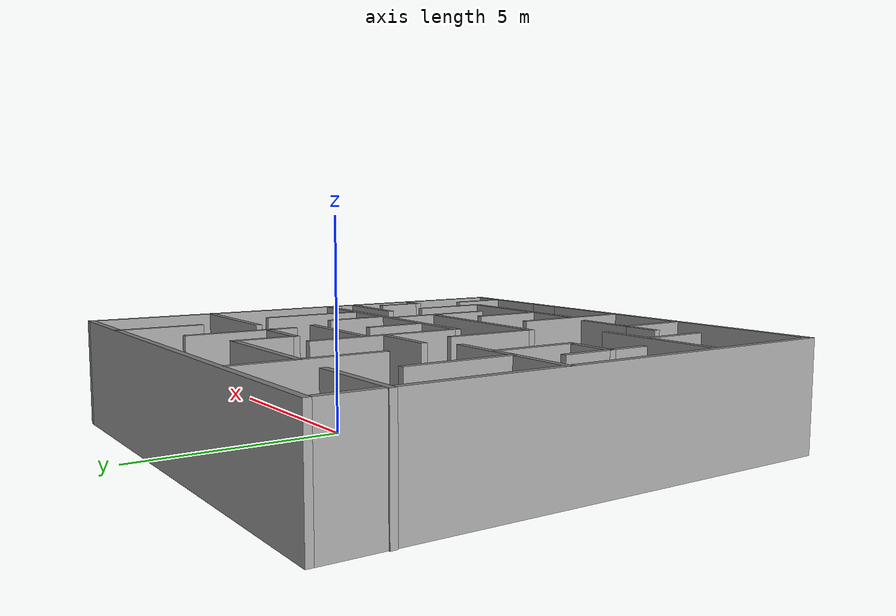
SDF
<?xml version='1.0'?>
<sdf version='1.6'>
  <model name='migong'>
    <pose frame=''>-1.49161 -1.44 0 0 -0 0</pose>
    <link name='Wall_100'>
      <collision name='Wall_100_Collision'>
        <geometry>
          <box>
            <size>1.5 0.15 2.5</size>
          </box>
        </geometry>
        <pose frame=''>0 0 1.25 0 -0 0</pose>
      </collision>
      <visual name='Wall_100_Visual'>
        <pose frame=''>0 0 1.25 0 -0 0</pose>
        <geometry>
          <box>
            <size>1.5 0.15 2.5</size>
          </box>
        </geometry>
        <material>
          <script>
            <uri>file://media/materials/scripts/gazebo.material</uri>
            <name>Gazebo/Grey</name>
          </script>
          <ambient>1 1 1 1</ambient>
        </material>
        <meta>
          <layer>0</layer>
        </meta>
      </visual>
      <pose frame=''>0.950852 0.184929 0 0 -0 1.5708</pose>
    </link>
    <link name='Wall_102'>
      <collision name='Wall_102_Collision'>
        <geometry>
          <box>
            <size>1.5 0.15 2.5</size>
          </box>
        </geometry>
        <pose frame=''>0 0 1.25 0 -0 0</pose>
      </collision>
      <visual name='Wall_102_Visual'>
        <pose frame=''>0 0 1.25 0 -0 0</pose>
        <geometry>
          <box>
            <size>1.5 0.15 2.5</size>
          </box>
        </geometry>
        <material>
          <script>
            <uri>file://media/materials/scripts/gazebo.material</uri>
            <name>Gazebo/Grey</name>
          </script>
          <ambient>1 1 1 1</ambient>
        </material>
        <meta>
          <layer>0</layer>
        </meta>
      </visual>
      <pose frame=''>-1.19244 1.32015 0 0 -0 3.14159</pose>
    </link>
    <link name='Wall_104'>
      <collision name='Wall_104_Collision'>
        <geometry>
          <box>
            <size>1.75 0.15 2.5</size>
          </box>
        </geometry>
        <pose frame=''>0 0 1.25 0 -0 0</pose>
      </collision>
      <visual name='Wall_104_Visual'>
        <pose frame=''>0 0 1.25 0 -0 0</pose>
        <geometry>
          <box>
            <size>1.75 0.15 2.5</size>
          </box>
        </geometry>
        <material>
          <script>
            <uri>file://media/materials/scripts/gazebo.material</uri>
            <name>Gazebo/Grey</name>
          </script>
          <ambient>1 1 1 1</ambient>
        </material>
        <meta>
          <layer>0</layer>
        </meta>
      </visual>
      <pose frame=''>1.42583 -3.4373 0 0 -0 1.5708</pose>
    </link>
    <link name='Wall_15'>
      <pose frame=''>0.016606 -5.8 0 0 -0 0</pose>
      <visual name='Wall_15_Visual_0'>
        <pose frame=''>-1.78008 0 1.25 0 -0 0</pose>
        <geometry>
          <box>
            <size>7.93985 0.15 2.5</size>
          </box>
        </geometry>
        <material>
          <script>
            <uri>file://media/materials/scripts/gazebo.material</uri>
            <name>Gazebo/Grey</name>
          </script>
          <ambient>1 1 1 1</ambient>
        </material>
        <meta>
          <layer>0</layer>
        </meta>
      </visual>
      <collision name='Wall_15_Collision_0'>
        <geometry>
          <box>
            <size>7.93985 0.15 2.5</size>
          </box>
        </geometry>
        <pose frame=''>-1.78008 0 1.25 0 -0 0</pose>
      </collision>
      <visual name='Wall_15_Visual_1'>
        <pose frame=''>4.41992 0 1.25 0 -0 0</pose>
        <geometry>
          <box>
            <size>2.66015 0.15 2.5</size>
          </box>
        </geometry>
        <material>
          <script>
            <uri>file://media/materials/scripts/gazebo.material</uri>
            <name>Gazebo/Grey</name>
          </script>
          <ambient>1 1 1 1</ambient>
        </material>
        <meta>
          <layer>0</layer>
        </meta>
      </visual>
      <collision name='Wall_15_Collision_1'>
        <geometry>
          <box>
            <size>2.66015 0.15 2.5</size>
          </box>
        </geometry>
        <pose frame=''>4.41992 0 1.25 0 -0 0</pose>
      </collision>
      <visual name='Wall_15_Visual_2'>
        <pose frame=''>2.63985 0 2.25 0 -0 0</pose>
        <geometry>
          <box>
            <size>0.9 0.15 0.5</size>
          </box>
        </geometry>
        <material>
          <script>
            <uri>file://media/materials/scripts/gazebo.material</uri>
            <name>Gazebo/Grey</name>
          </script>
          <ambient>1 1 1 1</ambient>
        </material>
        <meta>
          <layer>0</layer>
        </meta>
      </visual>
      <collision name='Wall_15_Collision_2'>
        <geometry>
          <box>
            <size>0.9 0.15 0.5</size>
          </box>
        </geometry>
        <pose frame=''>2.63985 0 2.25 0 -0 0</pose>
      </collision>
    </link>
    <link name='Wall_16'>
      <collision name='Wall_16_Collision'>
        <geometry>
          <box>
            <size>5.4 0.15 2.5</size>
          </box>
        </geometry>
        <pose frame=''>0 0 1.25 0 -0 0</pose>
      </collision>
      <visual name='Wall_16_Visual'>
        <pose frame=''>0 0 1.25 0 -0 0</pose>
        <geometry>
          <box>
            <size>5.4 0.15 2.5</size>
          </box>
        </geometry>
        <material>
          <script>
            <uri>file://media/materials/scripts/gazebo.material</uri>
            <name>Gazebo/Grey</name>
          </script>
          <ambient>1 1 1 1</ambient>
        </material>
        <meta>
          <layer>0</layer>
        </meta>
      </visual>
      <pose frame=''>5.69161 -3.175 0 0 -0 1.5708</pose>
    </link>
    <link name='Wall_18'>
      <collision name='Wall_18_Collision'>
        <geometry>
          <box>
            <size>3.75 0.15 2.5</size>
          </box>
        </geometry>
        <pose frame=''>0 0 1.25 0 -0 0</pose>
      </collision>
      <visual name='Wall_18_Visual'>
        <pose frame=''>0 0 1.25 0 -0 0</pose>
        <geometry>
          <box>
            <size>3.75 0.15 2.5</size>
          </box>
        </geometry>
        <material>
          <script>
            <uri>file://media/materials/scripts/gazebo.material</uri>
            <name>Gazebo/Grey</name>
          </script>
          <ambient>1 1 1 1</ambient>
        </material>
        <meta>
          <layer>0</layer>
        </meta>
      </visual>
      <pose frame=''>-0.408394 1.25 0 0 -0 1.5708</pose>
    </link>
    <link name='Wall_20'>
      <collision name='Wall_20_Collision'>
        <geometry>
          <box>
            <size>2.75 0.15 2.5</size>
          </box>
        </geometry>
        <pose frame=''>0 0 1.25 0 -0 0</pose>
      </collision>
      <visual name='Wall_20_Visual'>
        <pose frame=''>0 0 1.25 0 -0 0</pose>
        <geometry>
          <box>
            <size>2.75 0.15 2.5</size>
          </box>
        </geometry>
        <material>
          <script>
            <uri>file://media/materials/scripts/gazebo.material</uri>
            <name>Gazebo/Grey</name>
          </script>
          <ambient>1 1 1 1</ambient>
        </material>
        <meta>
          <layer>0</layer>
        </meta>
      </visual>
      <pose frame=''>2.3936 -1.9586 0 0 -0 -1.5708</pose>
    </link>
    <link name='Wall_25'>
      <collision name='Wall_25_Collision'>
        <geometry>
          <box>
            <size>2.5 0.15 2.5</size>
          </box>
        </geometry>
        <pose frame=''>0 0 1.25 0 -0 0</pose>
      </collision>
      <visual name='Wall_25_Visual'>
        <pose frame=''>0 0 1.25 0 -0 0</pose>
        <geometry>
          <box>
            <size>2.5 0.15 2.5</size>
          </box>
        </geometry>
        <material>
          <script>
            <uri>file://media/materials/scripts/gazebo.material</uri>
            <name>Gazebo/Grey</name>
          </script>
          <ambient>1 1 1 1</ambient>
        </material>
        <meta>
          <layer>0</layer>
        </meta>
      </visual>
      <pose frame=''>0.841365 1.75372 0 0 -0 0</pose>
    </link>
    <link name='Wall_29'>
      <collision name='Wall_29_Collision'>
        <geometry>
          <box>
            <size>2 0.15 2.5</size>
          </box>
        </geometry>
        <pose frame=''>0 0 1.25 0 -0 0</pose>
      </collision>
      <visual name='Wall_29_Visual'>
        <pose frame=''>0 0 1.25 0 -0 0</pose>
        <geometry>
          <box>
            <size>2 0.15 2.5</size>
          </box>
        </geometry>
        <material>
          <script>
            <uri>file://media/materials/scripts/gazebo.material</uri>
            <name>Gazebo/Grey</name>
          </script>
          <ambient>1 1 1 1</ambient>
        </material>
        <meta>
          <layer>0</layer>
        </meta>
      </visual>
      <pose frame=''>3.51742 4.86499 0 0 -0 -1.5708</pose>
    </link>
    <link name='Wall_3'>
      <collision name='Wall_3_Collision'>
        <geometry>
          <box>
            <size>6.25 0.15 2.5</size>
          </box>
        </geometry>
        <pose frame=''>0 0 1.25 0 -0 0</pose>
      </collision>
      <visual name='Wall_3_Visual'>
        <pose frame=''>0 0 1.25 0 -0 0</pose>
        <geometry>
          <box>
            <size>6.25 0.15 2.5</size>
          </box>
        </geometry>
        <material>
          <script>
            <uri>file://media/materials/scripts/gazebo.material</uri>
            <name>Gazebo/Grey</name>
          </script>
          <ambient>1 1 1 1</ambient>
        </material>
        <meta>
          <layer>0</layer>
        </meta>
      </visual>
      <pose frame=''>2.64161 -0.55 0 0 -0 0</pose>
    </link>
    <link name='Wall_31'>
      <collision name='Wall_31_Collision'>
        <geometry>
          <box>
            <size>3.25 0.15 2.5</size>
          </box>
        </geometry>
        <pose frame=''>0 0 1.25 0 -0 0</pose>
      </collision>
      <visual name='Wall_31_Visual'>
        <pose frame=''>0 0 1.25 0 -0 0</pose>
        <geometry>
          <box>
            <size>3.25 0.15 2.5</size>
          </box>
        </geometry>
        <material>
          <script>
            <uri>file://media/materials/scripts/gazebo.material</uri>
            <name>Gazebo/Grey</name>
          </script>
          <ambient>1 1 1 1</ambient>
        </material>
        <meta>
          <layer>0</layer>
        </meta>
      </visual>
      <pose frame=''>-4.08756 0.830504 0 0 -0 0</pose>
    </link>
    <link name='Wall_33'>
      <collision name='Wall_33_Collision'>
        <geometry>
          <box>
            <size>3.25 0.15 2.5</size>
          </box>
        </geometry>
        <pose frame=''>0 0 1.25 0 -0 0</pose>
      </collision>
      <visual name='Wall_33_Visual'>
        <pose frame=''>0 0 1.25 0 -0 0</pose>
        <geometry>
          <box>
            <size>3.25 0.15 2.5</size>
          </box>
        </geometry>
        <material>
          <script>
            <uri>file://media/materials/scripts/gazebo.material</uri>
            <name>Gazebo/Grey</name>
          </script>
          <ambient>1 1 1 1</ambient>
        </material>
        <meta>
          <layer>0</layer>
        </meta>
      </visual>
      <pose frame=''>-2.47393 4.11899 0 0 -0 -1.5708</pose>
    </link>
    <link name='Wall_35'>
      <collision name='Wall_35_Collision'>
        <geometry>
          <box>
            <size>3 0.15 2.5</size>
          </box>
        </geometry>
        <pose frame=''>0 0 1.25 0 -0 0</pose>
      </collision>
      <visual name='Wall_35_Visual'>
        <pose frame=''>0 0 1.25 0 -0 0</pose>
        <geometry>
          <box>
            <size>3 0.15 2.5</size>
          </box>
        </geometry>
        <material>
          <script>
            <uri>file://media/materials/scripts/gazebo.material</uri>
            <name>Gazebo/Grey</name>
          </script>
          <ambient>1 1 1 1</ambient>
        </material>
        <meta>
          <layer>0</layer>
        </meta>
      </visual>
      <pose frame=''>-4.07299 -2.98446 0 0 -0 0</pose>
    </link>
    <link name='Wall_37'>
      <collision name='Wall_37_Collision'>
        <geometry>
          <box>
            <size>2.5 0.15 2.5</size>
          </box>
        </geometry>
        <pose frame=''>0 0 1.25 0 -0 0</pose>
      </collision>
      <visual name='Wall_37_Visual'>
        <pose frame=''>0 0 1.25 0 -0 0</pose>
        <geometry>
          <box>
            <size>2.5 0.15 2.5</size>
          </box>
        </geometry>
        <material>
          <script>
            <uri>file://media/materials/scripts/gazebo.material</uri>
            <name>Gazebo/Grey</name>
          </script>
          <ambient>1 1 1 1</ambient>
        </material>
        <meta>
          <layer>0</layer>
        </meta>
      </visual>
      <pose frame=''>-4.14879 2.0055 0 0 -0 1.5708</pose>
    </link>
    <link name='Wall_39'>
      <collision name='Wall_39_Collision'>
        <geometry>
          <box>
            <size>3 0.15 2.5</size>
          </box>
        </geometry>
        <pose frame=''>0 0 1.25 0 -0 0</pose>
      </collision>
      <visual name='Wall_39_Visual'>
        <pose frame=''>0 0 1.25 0 -0 0</pose>
        <geometry>
          <box>
            <size>3 0.15 2.5</size>
          </box>
        </geometry>
        <material>
          <script>
            <uri>file://media/materials/scripts/gazebo.material</uri>
            <name>Gazebo/Grey</name>
          </script>
          <ambient>1 1 1 1</ambient>
        </material>
        <meta>
          <layer>0</layer>
        </meta>
      </visual>
      <pose frame=''>-0.054688 -4.30437 0 0 -0 1.5708</pose>
    </link>
    <link name='Wall_4'>
      <collision name='Wall_4_Collision'>
        <geometry>
          <box>
            <size>6.5 0.15 2.5</size>
          </box>
        </geometry>
        <pose frame=''>0 0 1.25 0 -0 0</pose>
      </collision>
      <visual name='Wall_4_Visual'>
        <pose frame=''>0 0 1.25 0 -0 0</pose>
        <geometry>
          <box>
            <size>6.5 0.15 2.5</size>
          </box>
        </geometry>
        <material>
          <script>
            <uri>file://media/materials/scripts/gazebo.material</uri>
            <name>Gazebo/Grey</name>
          </script>
          <ambient>1 1 1 1</ambient>
        </material>
        <meta>
          <layer>0</layer>
        </meta>
      </visual>
      <pose frame=''>5.69161 2.625 0 0 -0 1.5708</pose>
    </link>
    <link name='Wall_41'>
      <collision name='Wall_41_Collision'>
        <geometry>
          <box>
            <size>3.75 0.15 2.5</size>
          </box>
        </geometry>
        <pose frame=''>0 0 1.25 0 -0 0</pose>
      </collision>
      <visual name='Wall_41_Visual'>
        <pose frame=''>0 0 1.25 0 -0 0</pose>
        <geometry>
          <box>
            <size>3.75 0.15 2.5</size>
          </box>
        </geometry>
        <material>
          <script>
            <uri>file://media/materials/scripts/gazebo.material</uri>
            <name>Gazebo/Grey</name>
          </script>
          <ambient>1 1 1 1</ambient>
        </material>
        <meta>
          <layer>0</layer>
        </meta>
      </visual>
      <pose frame=''>0.37846 -1.82136 0 0 -0 3.14159</pose>
    </link>
    <link name='Wall_42'>
      <collision name='Wall_42_Collision'>
        <geometry>
          <box>
            <size>2.25 0.15 2.5</size>
          </box>
        </geometry>
        <pose frame=''>0 0 1.25 0 -0 0</pose>
      </collision>
      <visual name='Wall_42_Visual'>
        <pose frame=''>0 0 1.25 0 -0 0</pose>
        <geometry>
          <box>
            <size>2.25 0.15 2.5</size>
          </box>
        </geometry>
        <material>
          <script>
            <uri>file://media/materials/scripts/gazebo.material</uri>
            <name>Gazebo/Grey</name>
          </script>
          <ambient>1 1 1 1</ambient>
        </material>
        <meta>
          <layer>0</layer>
        </meta>
      </visual>
      <pose frame=''>-1.42154 -0.771359 0 0 -0 1.5708</pose>
    </link>
    <link name='Wall_44'>
      <collision name='Wall_44_Collision'>
        <geometry>
          <box>
            <size>4 0.15 2.5</size>
          </box>
        </geometry>
        <pose frame=''>0 0 1.25 0 -0 0</pose>
      </collision>
      <visual name='Wall_44_Visual'>
        <pose frame=''>0 0 1.25 0 -0 0</pose>
        <geometry>
          <box>
            <size>4 0.15 2.5</size>
          </box>
        </geometry>
        <material>
          <script>
            <uri>file://media/materials/scripts/gazebo.material</uri>
            <name>Gazebo/Grey</name>
          </script>
          <ambient>1 1 1 1</ambient>
        </material>
        <meta>
          <layer>0</layer>
        </meta>
      </visual>
      <pose frame=''>1.96577 -4.34396 0 0 -0 0</pose>
    </link>
    <link name='Wall_45'>
      <collision name='Wall_45_Collision'>
        <geometry>
          <box>
            <size>2 0.15 2.5</size>
          </box>
        </geometry>
        <pose frame=''>0 0 1.25 0 -0 0</pose>
      </collision>
      <visual name='Wall_45_Visual'>
        <pose frame=''>0 0 1.25 0 -0 0</pose>
        <geometry>
          <box>
            <size>2 0.15 2.5</size>
          </box>
        </geometry>
        <material>
          <script>
            <uri>file://media/materials/scripts/gazebo.material</uri>
            <name>Gazebo/Grey</name>
          </script>
          <ambient>1 1 1 1</ambient>
        </material>
        <meta>
          <layer>0</layer>
        </meta>
      </visual>
      <pose frame=''>3.89077 -3.41896 0 0 -0 1.5708</pose>
    </link>
    <link name='Wall_52'>
      <collision name='Wall_52_Collision'>
        <geometry>
          <box>
            <size>1.5 0.15 2.5</size>
          </box>
        </geometry>
        <pose frame=''>0 0 1.25 0 -0 0</pose>
      </collision>
      <visual name='Wall_52_Visual'>
        <pose frame=''>0 0 1.25 0 -0 0</pose>
        <geometry>
          <box>
            <size>1.5 0.15 2.5</size>
          </box>
        </geometry>
        <material>
          <script>
            <uri>file://media/materials/scripts/gazebo.material</uri>
            <name>Gazebo/Grey</name>
          </script>
          <ambient>1 1 1 1</ambient>
        </material>
        <meta>
          <layer>0</layer>
        </meta>
      </visual>
      <pose frame=''>-3.84477 -3.76819 0 0 -0 -1.5708</pose>
    </link>
    <link name='Wall_55'>
      <collision name='Wall_55_Collision'>
        <geometry>
          <box>
            <size>3 0.15 2.5</size>
          </box>
        </geometry>
        <pose frame=''>0 0 1.25 0 -0 0</pose>
      </collision>
      <visual name='Wall_55_Visual'>
        <pose frame=''>0 0 1.25 0 -0 0</pose>
        <geometry>
          <box>
            <size>3 0.15 2.5</size>
          </box>
        </geometry>
        <material>
          <script>
            <uri>file://media/materials/scripts/gazebo.material</uri>
            <name>Gazebo/Grey</name>
          </script>
          <ambient>1 1 1 1</ambient>
        </material>
        <meta>
          <layer>0</layer>
        </meta>
      </visual>
      <pose frame=''>-0.966836 4.33549 0 0 -0 0</pose>
    </link>
    <link name='Wall_56'>
      <collision name='Wall_56_Collision'>
        <geometry>
          <box>
            <size>1.5 0.15 2.5</size>
          </box>
        </geometry>
        <pose frame=''>0 0 1.25 0 -0 0</pose>
      </collision>
      <visual name='Wall_56_Visual'>
        <pose frame=''>0 0 1.25 0 -0 0</pose>
        <geometry>
          <box>
            <size>1.5 0.15 2.5</size>
          </box>
        </geometry>
        <material>
          <script>
            <uri>file://media/materials/scripts/gazebo.material</uri>
            <name>Gazebo/Grey</name>
          </script>
          <ambient>1 1 1 1</ambient>
        </material>
        <meta>
          <layer>0</layer>
        </meta>
      </visual>
      <pose frame=''>0.458164 3.66048 0 0 -0 -1.5708</pose>
    </link>
    <link name='Wall_57'>
      <collision name='Wall_57_Collision'>
        <geometry>
          <box>
            <size>1.5 0.15 2.5</size>
          </box>
        </geometry>
        <pose frame=''>0 0 1.25 0 -0 0</pose>
      </collision>
      <visual name='Wall_57_Visual'>
        <pose frame=''>0 0 1.25 0 -0 0</pose>
        <geometry>
          <box>
            <size>1.5 0.15 2.5</size>
          </box>
        </geometry>
        <material>
          <script>
            <uri>file://media/materials/scripts/gazebo.material</uri>
            <name>Gazebo/Grey</name>
          </script>
          <ambient>1 1 1 1</ambient>
        </material>
        <meta>
          <layer>0</layer>
        </meta>
      </visual>
      <pose frame=''>1.13316 2.98548 0 0 -0 0</pose>
    </link>
    <link name='Wall_59'>
      <collision name='Wall_59_Collision'>
        <geometry>
          <box>
            <size>2.5 0.15 2.5</size>
          </box>
        </geometry>
        <pose frame=''>0 0 1.25 0 -0 0</pose>
      </collision>
      <visual name='Wall_59_Visual'>
        <pose frame=''>0 0 1.25 0 -0 0</pose>
        <geometry>
          <box>
            <size>2.5 0.15 2.5</size>
          </box>
        </geometry>
        <material>
          <script>
            <uri>file://media/materials/scripts/gazebo.material</uri>
            <name>Gazebo/Grey</name>
          </script>
          <ambient>1 1 1 1</ambient>
        </material>
        <meta>
          <layer>0</layer>
        </meta>
      </visual>
      <pose frame=''>4.04588 0.761351 0 0 -0 1.5708</pose>
    </link>
    <link name='Wall_61'>
      <collision name='Wall_61_Collision'>
        <geometry>
          <box>
            <size>2 0.15 2.5</size>
          </box>
        </geometry>
        <pose frame=''>0 0 1.25 0 -0 0</pose>
      </collision>
      <visual name='Wall_61_Visual'>
        <pose frame=''>0 0 1.25 0 -0 0</pose>
        <geometry>
          <box>
            <size>2 0.15 2.5</size>
          </box>
        </geometry>
        <material>
          <script>
            <uri>file://media/materials/scripts/gazebo.material</uri>
            <name>Gazebo/Grey</name>
          </script>
          <ambient>1 1 1 1</ambient>
        </material>
        <meta>
          <layer>0</layer>
        </meta>
      </visual>
      <pose frame=''>-3.55274 -0.177749 0 0 -0 -1.5708</pose>
    </link>
    <link name='Wall_62'>
      <collision name='Wall_62_Collision'>
        <geometry>
          <box>
            <size>1.25 0.15 2.5</size>
          </box>
        </geometry>
        <pose frame=''>0 0 1.25 0 -0 0</pose>
      </collision>
      <visual name='Wall_62_Visual'>
        <pose frame=''>0 0 1.25 0 -0 0</pose>
        <geometry>
          <box>
            <size>1.25 0.15 2.5</size>
          </box>
        </geometry>
        <material>
          <script>
            <uri>file://media/materials/scripts/gazebo.material</uri>
            <name>Gazebo/Grey</name>
          </script>
          <ambient>1 1 1 1</ambient>
        </material>
        <meta>
          <layer>0</layer>
        </meta>
      </visual>
      <pose frame=''>-4.10274 -1.10275 0 0 -0 3.14159</pose>
    </link>
    <link name='Wall_64'>
      <collision name='Wall_64_Collision'>
        <geometry>
          <box>
            <size>1 0.15 2.5</size>
          </box>
        </geometry>
        <pose frame=''>0 0 1.25 0 -0 0</pose>
      </collision>
      <visual name='Wall_64_Visual'>
        <pose frame=''>0 0 1.25 0 -0 0</pose>
        <geometry>
          <box>
            <size>1 0.15 2.5</size>
          </box>
        </geometry>
        <material>
          <script>
            <uri>file://media/materials/scripts/gazebo.material</uri>
            <name>Gazebo/Grey</name>
          </script>
          <ambient>1 1 1 1</ambient>
        </material>
        <meta>
          <layer>0</layer>
        </meta>
      </visual>
      <pose frame=''>-4.65273 -1.52775 0 0 -0 -1.5708</pose>
    </link>
    <link name='Wall_66'>
      <collision name='Wall_66_Collision'>
        <geometry>
          <box>
            <size>1.25 0.15 2.5</size>
          </box>
        </geometry>
        <pose frame=''>0 0 1.25 0 -0 0</pose>
      </collision>
      <visual name='Wall_66_Visual'>
        <pose frame=''>0 0 1.25 0 -0 0</pose>
        <geometry>
          <box>
            <size>1.25 0.15 2.5</size>
          </box>
        </geometry>
        <material>
          <script>
            <uri>file://media/materials/scripts/gazebo.material</uri>
            <name>Gazebo/Grey</name>
          </script>
          <ambient>1 1 1 1</ambient>
        </material>
        <meta>
          <layer>0</layer>
        </meta>
      </visual>
      <pose frame=''>-4.65273 -0.552749 0 0 -0 1.5708</pose>
    </link>
    <link name='Wall_70'>
      <collision name='Wall_70_Collision'>
        <geometry>
          <box>
            <size>2.25 0.15 2.5</size>
          </box>
        </geometry>
        <pose frame=''>0 0 1.25 0 -0 0</pose>
      </collision>
      <visual name='Wall_70_Visual'>
        <pose frame=''>0 0 1.25 0 -0 0</pose>
        <geometry>
          <box>
            <size>2.25 0.15 2.5</size>
          </box>
        </geometry>
        <material>
          <script>
            <uri>file://media/materials/scripts/gazebo.material</uri>
            <name>Gazebo/Grey</name>
          </script>
          <ambient>1 1 1 1</ambient>
        </material>
        <meta>
          <layer>0</layer>
        </meta>
      </visual>
      <pose frame=''>-4.64161 4.39496 0 0 -0 0</pose>
    </link>
    <link name='Wall_72'>
      <collision name='Wall_72_Collision'>
        <geometry>
          <box>
            <size>1.75 0.15 2.5</size>
          </box>
        </geometry>
        <pose frame=''>0 0 1.25 0 -0 0</pose>
      </collision>
      <visual name='Wall_72_Visual'>
        <pose frame=''>0 0 1.25 0 -0 0</pose>
        <geometry>
          <box>
            <size>1.75 0.15 2.5</size>
          </box>
        </geometry>
        <material>
          <script>
            <uri>file://media/materials/scripts/gazebo.material</uri>
            <name>Gazebo/Grey</name>
          </script>
          <ambient>1 1 1 1</ambient>
        </material>
        <meta>
          <layer>0</layer>
        </meta>
      </visual>
      <pose frame=''>-2.11864 -4.90272 0 0 -0 1.5708</pose>
    </link>
    <link name='Wall_75'>
      <collision name='Wall_75_Collision'>
        <geometry>
          <box>
            <size>1.5 0.15 2.5</size>
          </box>
        </geometry>
        <pose frame=''>0 0 1.25 0 -0 0</pose>
      </collision>
      <visual name='Wall_75_Visual'>
        <pose frame=''>0 0 1.25 0 -0 0</pose>
        <geometry>
          <box>
            <size>1.5 0.15 2.5</size>
          </box>
        </geometry>
        <material>
          <script>
            <uri>file://media/materials/scripts/gazebo.material</uri>
            <name>Gazebo/Grey</name>
          </script>
          <ambient>1 1 1 1</ambient>
        </material>
        <meta>
          <layer>0</layer>
        </meta>
      </visual>
      <pose frame=''>-1.44364 -4.10272 0 0 -0 0</pose>
    </link>
    <link name='Wall_77'>
      <collision name='Wall_77_Collision'>
        <geometry>
          <box>
            <size>1 0.15 2.5</size>
          </box>
        </geometry>
        <pose frame=''>0 0 1.25 0 -0 0</pose>
      </collision>
      <visual name='Wall_77_Visual'>
        <pose frame=''>0 0 1.25 0 -0 0</pose>
        <geometry>
          <box>
            <size>1 0.15 2.5</size>
          </box>
        </geometry>
        <material>
          <script>
            <uri>file://media/materials/scripts/gazebo.material</uri>
            <name>Gazebo/Grey</name>
          </script>
          <ambient>1 1 1 1</ambient>
        </material>
        <meta>
          <layer>0</layer>
        </meta>
      </visual>
      <pose frame=''>-2.54364 -4.10272 0 0 -0 3.14159</pose>
    </link>
    <link name='Wall_8'>
      <collision name='Wall_8_Collision'>
        <geometry>
          <box>
            <size>11.5 0.15 2.5</size>
          </box>
        </geometry>
        <pose frame=''>0 0 1.25 0 -0 0</pose>
      </collision>
      <visual name='Wall_8_Visual'>
        <pose frame=''>0 0 1.25 0 -0 0</pose>
        <geometry>
          <box>
            <size>11.5 0.15 2.5</size>
          </box>
        </geometry>
        <material>
          <script>
            <uri>file://media/materials/scripts/gazebo.material</uri>
            <name>Gazebo/Grey</name>
          </script>
          <ambient>1 1 1 1</ambient>
        </material>
        <meta>
          <layer>0</layer>
        </meta>
      </visual>
      <pose frame=''>0.016606 5.8 0 0 -0 3.14159</pose>
    </link>
    <link name='Wall_80'>
      <collision name='Wall_80_Collision'>
        <geometry>
          <box>
            <size>2 0.15 2.5</size>
          </box>
        </geometry>
        <pose frame=''>0 0 1.25 0 -0 0</pose>
      </collision>
      <visual name='Wall_80_Visual'>
        <pose frame=''>0 0 1.25 0 -0 0</pose>
        <geometry>
          <box>
            <size>2 0.15 2.5</size>
          </box>
        </geometry>
        <material>
          <script>
            <uri>file://media/materials/scripts/gazebo.material</uri>
            <name>Gazebo/Grey</name>
          </script>
          <ambient>1 1 1 1</ambient>
        </material>
        <meta>
          <layer>0</layer>
        </meta>
      </visual>
      <pose frame=''>1.80816 3.91048 0 0 -0 1.5708</pose>
    </link>
    <link name='Wall_82'>
      <collision name='Wall_82_Collision'>
        <geometry>
          <box>
            <size>0.75 0.15 2.5</size>
          </box>
        </geometry>
        <pose frame=''>0 0 1.25 0 -0 0</pose>
      </collision>
      <visual name='Wall_82_Visual'>
        <pose frame=''>0 0 1.25 0 -0 0</pose>
        <geometry>
          <box>
            <size>0.75 0.15 2.5</size>
          </box>
        </geometry>
        <material>
          <script>
            <uri>file://media/materials/scripts/gazebo.material</uri>
            <name>Gazebo/Grey</name>
          </script>
          <ambient>1 1 1 1</ambient>
        </material>
        <meta>
          <layer>0</layer>
        </meta>
      </visual>
      <pose frame=''>1.80816 2.68548 0 0 -0 -1.5708</pose>
    </link>
    <link name='Wall_86'>
      <collision name='Wall_86_Collision'>
        <geometry>
          <box>
            <size>2 0.15 2.5</size>
          </box>
        </geometry>
        <pose frame=''>0 0 1.25 0 -0 0</pose>
      </collision>
      <visual name='Wall_86_Visual'>
        <pose frame=''>0 0 1.25 0 -0 0</pose>
        <geometry>
          <box>
            <size>2 0.15 2.5</size>
          </box>
        </geometry>
        <material>
          <script>
            <uri>file://media/materials/scripts/gazebo.material</uri>
            <name>Gazebo/Grey</name>
          </script>
          <ambient>1 1 1 1</ambient>
        </material>
        <meta>
          <layer>0</layer>
        </meta>
      </visual>
      <pose frame=''>4.69455 -1.35756 0 0 -0 3.14159</pose>
    </link>
    <link name='Wall_88'>
      <collision name='Wall_88_Collision'>
        <geometry>
          <box>
            <size>0.5 0.15 2.5</size>
          </box>
        </geometry>
        <pose frame=''>0 0 1.25 0 -0 0</pose>
      </collision>
      <visual name='Wall_88_Visual'>
        <pose frame=''>0 0 1.25 0 -0 0</pose>
        <geometry>
          <box>
            <size>0.5 0.15 2.5</size>
          </box>
        </geometry>
        <material>
          <script>
            <uri>file://media/materials/scripts/gazebo.material</uri>
            <name>Gazebo/Grey</name>
          </script>
          <ambient>1 1 1 1</ambient>
        </material>
        <meta>
          <layer>0</layer>
        </meta>
      </visual>
      <pose frame=''>5.32481 -3.11434 0 0 -0 3.14159</pose>
    </link>
    <link name='Wall_89'>
      <collision name='Wall_89_Collision'>
        <geometry>
          <box>
            <size>1.25 0.15 2.5</size>
          </box>
        </geometry>
        <pose frame=''>0 0 1.25 0 -0 0</pose>
      </collision>
      <visual name='Wall_89_Visual'>
        <pose frame=''>0 0 1.25 0 -0 0</pose>
        <geometry>
          <box>
            <size>1.25 0.15 2.5</size>
          </box>
        </geometry>
        <material>
          <script>
            <uri>file://media/materials/scripts/gazebo.material</uri>
            <name>Gazebo/Grey</name>
          </script>
          <ambient>1 1 1 1</ambient>
        </material>
        <meta>
          <layer>0</layer>
        </meta>
      </visual>
      <pose frame=''>5.14981 -2.56434 0 0 -0 1.5708</pose>
    </link>
    <link name='Wall_9'>
      <collision name='Wall_9_Collision'>
        <geometry>
          <box>
            <size>11.75 0.15 2.5</size>
          </box>
        </geometry>
        <pose frame=''>0 0 1.25 0 -0 0</pose>
      </collision>
      <visual name='Wall_9_Visual'>
        <pose frame=''>0 0 1.25 0 -0 0</pose>
        <geometry>
          <box>
            <size>11.75 0.15 2.5</size>
          </box>
        </geometry>
        <material>
          <script>
            <uri>file://media/materials/scripts/gazebo.material</uri>
            <name>Gazebo/Grey</name>
          </script>
          <ambient>1 1 1 1</ambient>
        </material>
        <meta>
          <layer>0</layer>
        </meta>
      </visual>
      <pose frame=''>-5.65839 0 0 0 -0 -1.5708</pose>
    </link>
    <link name='Wall_91'>
      <collision name='Wall_91_Collision'>
        <geometry>
          <box>
            <size>1.5 0.15 2.5</size>
          </box>
        </geometry>
        <pose frame=''>0 0 1.25 0 -0 0</pose>
      </collision>
      <visual name='Wall_91_Visual'>
        <pose frame=''>0 0 1.25 0 -0 0</pose>
        <geometry>
          <box>
            <size>1.5 0.15 2.5</size>
          </box>
        </geometry>
        <material>
          <script>
            <uri>file://media/materials/scripts/gazebo.material</uri>
            <name>Gazebo/Grey</name>
          </script>
          <ambient>1 1 1 1</ambient>
        </material>
        <meta>
          <layer>0</layer>
        </meta>
      </visual>
      <pose frame=''>4.81101 -5.06914 0 0 -0 1.5708</pose>
    </link>
    <link name='Wall_94'>
      <collision name='Wall_94_Collision'>
        <geometry>
          <box>
            <size>3 0.15 2.5</size>
          </box>
        </geometry>
        <pose frame=''>0 0 1.25 0 -0 0</pose>
      </collision>
      <visual name='Wall_94_Visual'>
        <pose frame=''>0 0 1.25 0 -0 0</pose>
        <geometry>
          <box>
            <size>3 0.15 2.5</size>
          </box>
        </geometry>
        <material>
          <script>
            <uri>file://media/materials/scripts/gazebo.material</uri>
            <name>Gazebo/Grey</name>
          </script>
          <ambient>1 1 1 1</ambient>
        </material>
        <meta>
          <layer>0</layer>
        </meta>
      </visual>
      <pose frame=''>4.21461 2.80345 0 0 -0 3.14159</pose>
    </link>
    <link name='Wall_98'>
      <collision name='Wall_98_Collision'>
        <geometry>
          <box>
            <size>1.5 0.15 2.5</size>
          </box>
        </geometry>
        <pose frame=''>0 0 1.25 0 -0 0</pose>
      </collision>
      <visual name='Wall_98_Visual'>
        <pose frame=''>0 0 1.25 0 -0 0</pose>
        <geometry>
          <box>
            <size>1.5 0.15 2.5</size>
          </box>
        </geometry>
        <material>
          <script>
            <uri>file://media/materials/scripts/gazebo.material</uri>
            <name>Gazebo/Grey</name>
          </script>
          <ambient>1 1 1 1</ambient>
        </material>
        <meta>
          <layer>0</layer>
        </meta>
      </visual>
      <pose frame=''>2.6998 0.245611 0 0 -0 1.5708</pose>
    </link>
    <static>1</static>
  </model>
</sdf>
